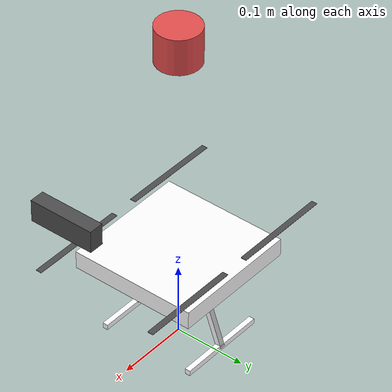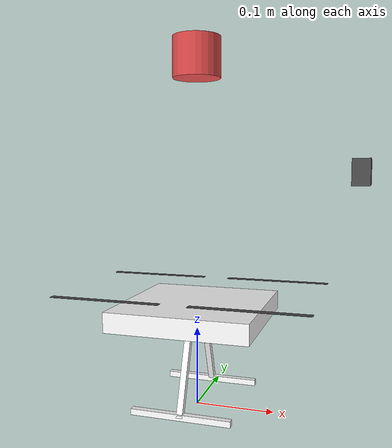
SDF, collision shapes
<sdf version="1.9">
  <model name="x500_depth">

    <!-- 首先包含原始模型 -->
    <include merge="true">
      <uri>file:///home/duke/PX4-Autopilot/Tools/simulation/gz/models/x500_base/model.sdf</uri>
    </include>

    <!-- 添加相机链接 -->
    <link name="camera_link">
      <pose>0.2 0 0.3 0 0 0</pose>  <!-- 使用绝对位置，不指定relative_to -->

      <inertial>
        <mass>0.015</mass>
        <inertia>
          <ixx>0.00001</ixx>
          <iyy>0.00001</iyy>
          <izz>0.00001</izz>
        </inertia>
      </inertial>

      <visual name="camera_visual">
        <geometry>
          <box>
            <size>0.02 0.09 0.03</size>
          </box>
        </geometry>
        <material>
          <ambient>0.2 0.2 0.2 1</ambient>
          <diffuse>0.3 0.3 0.3 1</diffuse>
        </material>
      </visual>

      <collision name="camera_collision">
        <geometry>
          <box>
            <size>0.02 0.09 0.03</size>
          </box>
        </geometry>
      </collision>

      <!-- RGBD相机传感器 -->
      <sensor name="rgbd_camera" type="rgbd_camera">
        <always_on>true</always_on>
        <update_rate>120</update_rate>
        <visualize>true</visualize>
        <topic>camera</topic>

        <!-- 启用时间戳同步 -->
        <enable_metrics>true</enable_metrics>

        <camera>
          <horizontal_fov>1.4</horizontal_fov>

          <!-- RGB图像配置 -->
          <image>
            <width>640</width>
            <height>480</height>
            <format>RGB_INT8</format>
          </image>

          <!-- 深度图像配置 -->
          <depth>
            <width>640</width>
            <height>480</height>
            <format>R_FLOAT32</format>
          </depth>

          <!-- 点云配置 -->
          <point_cloud>
            <enable>true</enable>
          </point_cloud>

          <clip>
            <near>0.1</near>
            <far>100</far>
          </clip>
        </camera>
      </sensor>

      <!-- IMU传感器 - 与相机同链接确保时间戳同步 -->
      <sensor name="imu_sensor" type="imu">
        <always_on>true</always_on>
        <update_rate>200</update_rate>
        <topic>sensor_imu</topic>
        <enable_metrics>true</enable_metrics>

        <imu>
          <angular_velocity>
            <x>
              <noise type="gaussian">
                <mean>0.0</mean>
                <stddev>0.0002</stddev>
                <bias_mean>0.0000075</bias_mean>
                <bias_stddev>0.0000008</bias_stddev>
              </noise>
            </x>
            <y>
              <noise type="gaussian">
                <mean>0.0</mean>
                <stddev>0.0002</stddev>
                <bias_mean>0.0000075</bias_mean>
                <bias_stddev>0.0000008</bias_stddev>
              </noise>
            </y>
            <z>
              <noise type="gaussian">
                <mean>0.0</mean>
                <stddev>0.0002</stddev>
                <bias_mean>0.0000075</bias_mean>
                <bias_stddev>0.0000008</bias_stddev>
              </noise>
            </z>
          </angular_velocity>
          <linear_acceleration>
            <x>
              <noise type="gaussian">
                <mean>0.0</mean>
                <stddev>0.017</stddev>
                <bias_mean>0.1</bias_mean>
                <bias_stddev>0.001</bias_stddev>
              </noise>
            </x>
            <y>
              <noise type="gaussian">
                <mean>0.0</mean>
                <stddev>0.017</stddev>
                <bias_mean>0.1</bias_mean>
                <bias_stddev>0.001</bias_stddev>
              </noise>
            </y>
            <z>
              <noise type="gaussian">
                <mean>0.0</mean>
                <stddev>0.017</stddev>
                <bias_mean>0.1</bias_mean>
                <bias_stddev>0.001</bias_stddev>
              </noise>
            </z>
          </linear_acceleration>
        </imu>
      </sensor>
    </link>

    <!-- 将相机连接到x500的主体上 -->
    <joint name="camera_joint" type="fixed">
      <parent>base_link</parent>
      <child>camera_link</child>
    </joint>

    <!-- 添加雷达传感器链接 - 放在无人机正头顶 -->
    <link name="lidar_sensor_link">
      <!-- 放在无人机正头顶，比相机略高 -->
      <pose>0 0 0.44 0 0 0</pose>  <!-- 无人机正头顶，高度0.44米 -->

      <inertial>
        <mass>0.1</mass>
        <inertia>
          <ixx>0.0001</ixx>
          <iyy>0.0001</iyy>
          <izz>0.0001</izz>
          <ixy>0.0</ixy>
          <ixz>0.0</ixz>
          <iyz>0.0</iyz>
        </inertia>
      </inertial>

      <!-- 雷达可视化 - 更明显的模型 -->
      <visual name="lidar_visual">
        <geometry>
          <cylinder>
            <radius>0.03</radius>
            <length>0.05</length>
          </cylinder>
        </geometry>
        <material>
          <ambient>0.8 0.2 0.2 1</ambient>  <!-- 红色 -->
          <diffuse>0.9 0.3 0.3 1</diffuse>
          <specular>0.1 0.1 0.1 1</specular>
        </material>
      </visual>

      <!-- 添加第二个视觉元素，使雷达更容易看到 -->
      <visual name="lidar_top">
        <pose>0 0 0.025 0 0 0</pose>  <!-- 放在圆柱体顶部 -->
        <geometry>
          <sphere>
            <radius>0.02</radius>
          </sphere>
        </geometry>
        <material>
          <ambient>0.2 0.8 0.2 1</ambient>  <!-- 绿色 -->
          <diffuse>0.3 0.9 0.3 1</diffuse>
        </material>
      </visual>

      <collision name="lidar_collision">
        <geometry>
          <cylinder>
            <radius>0.03</radius>
            <length>0.05</length>
          </cylinder>
        </geometry>
      </collision>

      <!-- 雷达传感器 -->
      <sensor name='lidar' type='gpu_lidar'>
        <pose>0 0 0 0 0 3.14159</pose>
        <update_rate>120</update_rate>
        <topic>lidar</topic>
        <gz_frame_id>lidar_sensor_link</gz_frame_id>
        <ray>
          <scan>
            <horizontal>
              <samples>360</samples>
              <resolution>1</resolution>
              <min_angle>-3.14159</min_angle>
              <max_angle>3.14159</max_angle>
            </horizontal>
            <vertical>
              <samples>32</samples>
              <resolution>1</resolution>
              <min_angle>-0.335</min_angle>
              <max_angle>0.335</max_angle>
            </vertical>
          </scan>
          <range>
            <min>0.1</min>
            <max>50.0</max>
            <resolution>0.01</resolution>
          </range>
          <noise>
            <type>gaussian</type>
            <mean>0.0</mean>
            <stddev>0.01</stddev>
          </noise>
        </ray>
        <always_on>true</always_on>
        <visualize>true</visualize>
        <enable_metrics>true</enable_metrics>
      </sensor>

      <!-- 为雷达添加IMU传感器 - 与雷达同链接确保时间戳同步 -->
      <sensor name="lidar_imu_sensor" type="imu">
        <always_on>true</always_on>
        <update_rate>200</update_rate>
        <topic>lidar_imu</topic>  <!-- 使用不同的话题名称避免冲突 -->
        <enable_metrics>true</enable_metrics>

        <imu>
          <angular_velocity>
            <x>
              <noise type="gaussian">
                <mean>0.0</mean>
                <stddev>0.0002</stddev>
                <bias_mean>0.0000075</bias_mean>
                <bias_stddev>0.0000008</bias_stddev>
              </noise>
            </x>
            <y>
              <noise type="gaussian">
                <mean>0.0</mean>
                <stddev>0.0002</stddev>
                <bias_mean>0.0000075</bias_mean>
                <bias_stddev>0.0000008</bias_stddev>
              </noise>
            </y>
            <z>
              <noise type="gaussian">
                <mean>0.0</mean>
                <stddev>0.0002</stddev>
                <bias_mean>0.0000075</bias_mean>
                <bias_stddev>0.0000008</bias_stddev>
              </noise>
            </z>
          </angular_velocity>
          <linear_acceleration>
            <x>
              <noise type="gaussian">
                <mean>0.0</mean>
                <stddev>0.017</stddev>
                <bias_mean>0.1</bias_mean>
                <bias_stddev>0.001</bias_stddev>
              </noise>
            </x>
            <y>
              <noise type="gaussian">
                <mean>0.0</mean>
                <stddev>0.017</stddev>
                <bias_mean>0.1</bias_mean>
                <bias_stddev>0.001</bias_stddev>
              </noise>
            </y>
            <z>
              <noise type="gaussian">
                <mean>0.0</mean>
                <stddev>0.017</stddev>
                <bias_mean>0.1</bias_mean>
                <bias_stddev>0.001</bias_stddev>
              </noise>
            </z>
          </linear_acceleration>
        </imu>
      </sensor>
    </link>

    <!-- 将雷达连接到x500的主体上 -->
    <joint name="lidar_joint" type="fixed">
      <parent>base_link</parent>
      <child>lidar_sensor_link</child>
    </joint>

  </model>
</sdf>

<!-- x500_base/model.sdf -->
<sdf version='1.9'>
  <model name='x500_base'>
    <pose>0 0 0.12 0 0 0</pose>
    <self_collide>false</self_collide>
    <static>false</static>
    <link name="base_link">
      <inertial>
        <mass>1.0</mass>
        <inertia>
          <ixx>0.005416666666666667</ixx>
          <ixy>0</ixy>
          <ixz>0</ixz>
          <iyy>0.005416666666666667</iyy>
          <iyz>0</iyz>
          <izz>0.010000000000000002</izz>
        </inertia>
      </inertial>
      <gravity>true</gravity>
      <velocity_decay/>
      <visual name="base_link_visual">
        <pose>0 0 0.0125 0 0 3.141592654</pose>
        <geometry>
          <mesh>
            <scale>0.5 0.5 0.5</scale>
            <uri>model://x500_base/meshes/NXP-HGD-CF.dae</uri>
          </mesh>
        </geometry>
      </visual>
      <visual name="5010_motor_base_0">
        <pose>0.087 0.087 0.016 0 0 -0.45</pose>
        <geometry>
          <mesh>
            <scale>0.5 0.5 0.5</scale>
            <uri>model://x500_base/meshes/5010Base.dae</uri>
          </mesh>
        </geometry>
      </visual>
      <visual name="5010_motor_base_1">
        <pose>-0.087 0.087 0.016 0 0 -0.45</pose>
        <geometry>
          <mesh>
            <scale>0.5 0.5 0.5</scale>
            <uri>model://x500_base/meshes/5010Base.dae</uri>
          </mesh>
        </geometry>
      </visual>
      <visual name="5010_motor_base_2">
        <pose>0.087 -0.087 0.016 0 0 -0.45</pose>
        <geometry>
          <mesh>
            <scale>0.5 0.5 0.5</scale>
            <uri>model://x500_base/meshes/5010Base.dae</uri>
          </mesh>
        </geometry>
      </visual>
      <visual name="5010_motor_base_3">
        <pose>-0.087 -0.087 0.016 0 0 -0.45</pose>
        <geometry>
          <mesh>
            <scale>0.5 0.5 0.5</scale>
            <uri>model://x500_base/meshes/5010Base.dae</uri>
          </mesh>
        </geometry>
      </visual>
      <visual name="NXP_FMUK66_FRONT">
        <pose>0.0235 0.0005 0.0215 1 0 1.57</pose>
        <cast_shadows>false</cast_shadows>
        <geometry>
          <plane>
            <normal>0 0 1</normal>
            <size>0.0065 0.0035</size>
          </plane>
        </geometry>
        <material>
          <diffuse>1.0 1.0 1.0</diffuse>
          <specular>1.0 1.0 1.0</specular>
          <pbr>
            <metal>
              <albedo_map>model://x500_base/materials/textures/nxp.png</albedo_map>
            </metal>
          </pbr>
        </material>
      </visual>
      <visual name="NXP_FMUK66_TOP">
        <pose>-0.0115 0 0.02575 0 0 -1.57</pose>
        <cast_shadows>false</cast_shadows>
        <geometry>
          <plane>
            <normal>0 0 1</normal>
            <size>0.0065 0.0035</size>
          </plane>
        </geometry>
        <material>
          <diffuse>1.0 1.0 1.0</diffuse>
          <specular>1.0 1.0 1.0</specular>
          <pbr>
            <metal>
              <albedo_map>model://x500_base/materials/textures/nxp.png</albedo_map>
            </metal>
          </pbr>
        </material>
      </visual>
      <visual name="RDDRONE_FMUK66_TOP">
        <pose>-0.015 0 0.02575 0 0 -1.57</pose>
        <cast_shadows>false</cast_shadows>
        <geometry>
          <plane>
            <normal>0 0 1</normal>
            <size>0.016 0.0017</size>
          </plane>
        </geometry>
        <material>
          <diffuse>1.0 1.0 1.0</diffuse>
          <specular>1.0 1.0 1.0</specular>
          <pbr>
            <metal>
              <albedo_map>model://x500_base/materials/textures/rd.png</albedo_map>
            </metal>
          </pbr>
        </material>
      </visual>
      <collision name="base_link_collision_0">
        <pose>0 0 0.0035 0 0 0</pose>
        <geometry>
          <box>
            <size>0.17677669529663686 0.17677669529663686 0.025</size>
          </box>
        </geometry>
        <surface>
          <contact>
            <ode>
              <min_depth>0.001</min_depth>
              <max_vel>0</max_vel>
            </ode>
          </contact>
          <friction>
            <ode/>
          </friction>
        </surface>
      </collision>
      <collision name="base_link_collision_1">
        <pose>0 -0.049 -0.0615 -0.35 0 0</pose>
        <geometry>
          <box>
            <size>0.0075 0.0075 0.105</size>
          </box>
        </geometry>
        <surface>
          <contact>
            <ode>
              <min_depth>0.001</min_depth>
              <max_vel>0</max_vel>
            </ode>
          </contact>
          <friction>
            <ode/>
          </friction>
        </surface>
      </collision>
      <collision name="base_link_collision_2">
        <pose>0 0.049 -0.0615 0.35 0 0</pose>
        <geometry>
          <box>
            <size>0.0075 0.0075 0.105</size>
          </box>
        </geometry>
        <surface>
          <contact>
            <ode>
              <min_depth>0.001</min_depth>
              <max_vel>0</max_vel>
            </ode>
          </contact>
          <friction>
            <ode/>
          </friction>
        </surface>
      </collision>
      <collision name="base_link_collision_3">
        <pose>0 -0.066 -0.10975 0 0 0</pose>
        <geometry>
          <box>
            <size>0.125 0.0075 0.0075</size>
          </box>
        </geometry>
        <surface>
          <contact>
            <ode>
              <min_depth>0.001</min_depth>
              <max_vel>0</max_vel>
            </ode>
          </contact>
          <friction>
            <ode/>
          </friction>
        </surface>
      </collision>
      <collision name="base_link_collision_4">
        <pose>0 0.066 -0.10975 0 0 0</pose>
        <geometry>
          <box>
            <size>0.125 0.0075 0.0075</size>
          </box>
        </geometry>
        <surface>
          <contact>
            <ode>
              <min_depth>0.001</min_depth>
              <max_vel>0</max_vel>
            </ode>
          </contact>
          <friction>
            <ode/>
          </friction>
        </surface>
      </collision>
      <sensor name="air_pressure_sensor" type="air_pressure">
        <always_on>1</always_on>
        <update_rate>50</update_rate>
        <air_pressure>
          <pressure>
            <noise type="gaussian">
              <mean>0</mean>
              <stddev>0.01</stddev>
            </noise>
          </pressure>
        </air_pressure>
      </sensor>
      <sensor name="imu_sensor" type="imu">
        <always_on>1</always_on>
        <update_rate>250</update_rate>
        <imu>
          <angular_velocity>
            <x>
              <noise type="gaussian">
                <mean>0</mean>
                <stddev>0.00018665</stddev>
                <dynamic_bias_stddev>3.8785e-05</dynamic_bias_stddev>
                <dynamic_bias_correlation_time>1000</dynamic_bias_correlation_time>
              </noise>
            </x>
            <y>
              <noise type="gaussian">
                <mean>0</mean>
                <stddev>0.00018665</stddev>
                <dynamic_bias_stddev>3.8785e-05</dynamic_bias_stddev>
                <dynamic_bias_correlation_time>1000</dynamic_bias_correlation_time>
              </noise>
            </y>
            <z>
              <noise type="gaussian">
                <mean>0</mean>
                <stddev>0.00018665</stddev>
                <dynamic_bias_stddev>3.8785e-05</dynamic_bias_stddev>
                <dynamic_bias_correlation_time>1000</dynamic_bias_correlation_time>
              </noise>
            </z>
          </angular_velocity>
          <linear_acceleration>
            <x>
              <noise type="gaussian">
                <mean>0</mean>
                <stddev>0.00186</stddev>
                <dynamic_bias_stddev>0.006</dynamic_bias_stddev>
                <dynamic_bias_correlation_time>300</dynamic_bias_correlation_time>
              </noise>
            </x>
            <y>
              <noise type="gaussian">
                <mean>0</mean>
                <stddev>0.00186</stddev>
                <dynamic_bias_stddev>0.006</dynamic_bias_stddev>
                <dynamic_bias_correlation_time>300</dynamic_bias_correlation_time>
              </noise>
            </y>
            <z>
              <noise type="gaussian">
                <mean>0</mean>
                <stddev>0.00186</stddev>
                <dynamic_bias_stddev>0.006</dynamic_bias_stddev>
                <dynamic_bias_correlation_time>300</dynamic_bias_correlation_time>
              </noise>
            </z>
          </linear_acceleration>
        </imu>
      </sensor>
      <sensor name="navsat_sensor" type="navsat">
        <always_on>1</always_on>
        <update_rate>30</update_rate>
      </sensor>
    </link>
    <link name="rotor_0">
      <gravity>true</gravity>
      <self_collide>false</self_collide>
      <velocity_decay/>
      <pose>0.087 -0.087 0.03 0 0 0</pose>
      <inertial>
          <mass>0.008038461538461538</mass>
          <inertia>
            <ixx>9.616227620998331e-08</ixx>
            <iyy>6.528962922925001e-06</iyy>
            <izz>6.62464558678501e-06</izz>
          </inertia>
        </inertial>
      <visual name="rotor_0_visual">
        <pose>-0.011 -0.07319230769230769 -0.008 0 0 0</pose>
        <geometry>
          <mesh>
            <scale>0.4230769230769231 0.4230769230769231 0.4230769230769231</scale>
            <uri>model://x500_base/meshes/1345_prop_ccw.stl</uri>
          </mesh>
        </geometry>
        <material>
          <script>
            <name>Gazebo/DarkGrey</name>
            <uri>file://media/materials/scripts/gazebo.material</uri>
          </script>
        </material>
      </visual>
      <visual name="rotor_0_visual_motor_bell">
        <pose>0 0 -0.016 0 0 0</pose>
        <geometry>
          <mesh>
            <scale>0.5 0.5 0.5</scale>
            <uri>model://x500_base/meshes/5010Bell.dae</uri>
          </mesh>
        </geometry>
      </visual>
      <collision name="rotor_0_collision">
        <pose>0 0 0 0 0 0 </pose>
        <geometry>
          <box>
            <size>0.1396153846153846 0.008461538461538461 0.0004230769230769231</size>
          </box>
        </geometry>
        <surface>
          <contact>
            <ode>
              <min_depth>0.001</min_depth>
              <max_vel>0</max_vel>
            </ode>
          </contact>
          <friction>
            <ode/>
          </friction>
        </surface>
      </collision>
    </link>
    <joint name="rotor_0_joint" type="revolute">
      <parent>base_link</parent>
      <child>rotor_0</child>
      <axis>
        <xyz>0 0 1</xyz>
        <limit>
          <lower>-1e+16</lower>
          <upper>1e+16</upper>
        </limit>
        <dynamics>
          <spring_reference>0</spring_reference>
          <spring_stiffness>0</spring_stiffness>
        </dynamics>
      </axis>
    </joint>
    <link name="rotor_1">
      <gravity>true</gravity>
      <self_collide>false</self_collide>
      <velocity_decay/>
      <pose>-0.087 0.087 0.03 0 0 0</pose>
      <inertial>
          <mass>0.008038461538461538</mass>
          <inertia>
            <ixx>9.616227620998331e-08</ixx>
            <iyy>6.528962922925001e-06</iyy>
            <izz>6.62464558678501e-06</izz>
          </inertia>
        </inertial>
      <visual name="rotor_1_visual">
        <pose>-0.011 -0.07319230769230769 -0.008 0 0 0</pose>
        <geometry>
          <mesh>
            <scale>0.4230769230769231 0.4230769230769231 0.4230769230769231</scale>
            <uri>model://x500_base/meshes/1345_prop_ccw.stl</uri>
          </mesh>
        </geometry>
        <material>
          <script>
            <name>Gazebo/DarkGrey</name>
            <uri>file://media/materials/scripts/gazebo.material</uri>
          </script>
        </material>
      </visual>
      <visual name="rotor_1_visual_motor_top">
        <pose>0 0 -0.016 0 0 0</pose>
        <geometry>
          <mesh>
            <scale>0.5 0.5 0.5</scale>
            <uri>model://x500_base/meshes/5010Bell.dae</uri>
          </mesh>
        </geometry>
      </visual>
      <collision name="rotor_1_collision">
        <pose>0 0 0 0 0 0 </pose>
        <geometry>
          <box>
            <size>0.1396153846153846 0.008461538461538461 0.0004230769230769231</size>
          </box>
        </geometry>
        <surface>
          <contact>
            <ode>
              <min_depth>0.001</min_depth>
              <max_vel>0</max_vel>
            </ode>
          </contact>
          <friction>
            <ode/>
          </friction>
        </surface>
      </collision>
    </link>
    <joint name="rotor_1_joint" type="revolute">
      <parent>base_link</parent>
      <child>rotor_1</child>
      <axis>
        <xyz>0 0 1</xyz>
        <limit>
          <lower>-1e+16</lower>
          <upper>1e+16</upper>
        </limit>
        <dynamics>
          <spring_reference>0</spring_reference>
          <spring_stiffness>0</spring_stiffness>
        </dynamics>
      </axis>
    </joint>
    <link name="rotor_2">
      <gravity>true</gravity>
      <self_collide>false</self_collide>
      <velocity_decay/>
      <pose>0.087 0.087 0.03 0 0 0</pose>
      <inertial>
          <mass>0.008038461538461538</mass>
          <inertia>
            <ixx>9.616227620998331e-08</ixx>
            <iyy>6.528962922925001e-06</iyy>
            <izz>6.62464558678501e-06</izz>
          </inertia>
        </inertial>
      <visual name="rotor_2_visual">
        <pose>-0.011 -0.07319230769230769 -0.008 0 0 0</pose>
        <geometry>
          <mesh>
            <scale>0.4230769230769231 0.4230769230769231 0.4230769230769231</scale>
            <uri>model://x500_base/meshes/1345_prop_cw.stl</uri>
          </mesh>
        </geometry>
        <material>
          <script>
            <name>Gazebo/DarkGrey</name>
            <uri>file://media/materials/scripts/gazebo.material</uri>
          </script>
        </material>
      </visual>
      <visual name="rotor_2_visual_motor_top">
        <pose>0 0 -0.016 0 0 0</pose>
        <geometry>
          <mesh>
            <scale>0.5 0.5 0.5</scale>
            <uri>model://x500_base/meshes/5010Bell.dae</uri>
          </mesh>
        </geometry>
      </visual>
      <collision name="rotor_2_collision">
        <pose>0 0 0 0 0 0 </pose>
        <geometry>
          <box>
            <size>0.1396153846153846 0.008461538461538461 0.0004230769230769231</size>
          </box>
        </geometry>
        <surface>
          <contact>
            <ode>
              <min_depth>0.001</min_depth>
              <max_vel>0</max_vel>
            </ode>
          </contact>
          <friction>
            <ode/>
          </friction>
        </surface>
      </collision>
    </link>
    <joint name="rotor_2_joint" type="revolute">
      <parent>base_link</parent>
      <child>rotor_2</child>
      <axis>
        <xyz>0 0 1</xyz>
        <limit>
          <lower>-1e+16</lower>
          <upper>1e+16</upper>
        </limit>
        <dynamics>
          <spring_reference>0</spring_reference>
          <spring_stiffness>0</spring_stiffness>
        </dynamics>
      </axis>
    </joint>
    <link name="rotor_3">
      <gravity>true</gravity>
      <self_collide>false</self_collide>
      <velocity_decay/>
      <pose>-0.087 -0.087 0.03 0 0 0</pose>
      <inertial>
          <mass>0.008038461538461538</mass>
          <inertia>
            <ixx>9.616227620998331e-08</ixx>
            <iyy>6.528962922925001e-06</iyy>
            <izz>6.62464558678501e-06</izz>
          </inertia>
        </inertial>
      <visual name="rotor_3_visual">
        <pose>-0.011 -0.07319230769230769 -0.008 0 0 0</pose>
        <geometry>
          <mesh>
            <scale>0.4230769230769231 0.4230769230769231 0.4230769230769231</scale>
            <uri>model://x500_base/meshes/1345_prop_cw.stl</uri>
          </mesh>
        </geometry>
        <material>
          <script>
            <name>Gazebo/DarkGrey</name>
            <uri>file://media/materials/scripts/gazebo.material</uri>
          </script>
        </material>
      </visual>
      <visual name="rotor_3_visual_motor_top">
        <pose>0 0 -0.016 0 0 0</pose>
        <geometry>
          <mesh>
            <scale>0.5 0.5 0.5</scale>
            <uri>model://x500_base/meshes/5010Bell.dae</uri>
          </mesh>
        </geometry>
      </visual>
      <collision name="rotor_3_collision">
        <pose>0 0 0 0 0 0 </pose>
        <geometry>
          <box>
            <size>0.1396153846153846 0.008461538461538461 0.0004230769230769231</size>
          </box>
        </geometry>
        <surface>
          <contact>
            <ode>
              <min_depth>0.001</min_depth>
              <max_vel>0</max_vel>
            </ode>
          </contact>
          <friction>
            <ode/>
          </friction>
        </surface>
      </collision>
    </link>
    <joint name="rotor_3_joint" type="revolute">
      <parent>base_link</parent>
      <child>rotor_3</child>
      <axis>
        <xyz>0 0 1</xyz>
        <limit>
          <lower>-1e+16</lower>
          <upper>1e+16</upper>
        </limit>
        <dynamics>
          <spring_reference>0</spring_reference>
          <spring_stiffness>0</spring_stiffness>
        </dynamics>
      </axis>
    </joint>
  </model>
</sdf>
